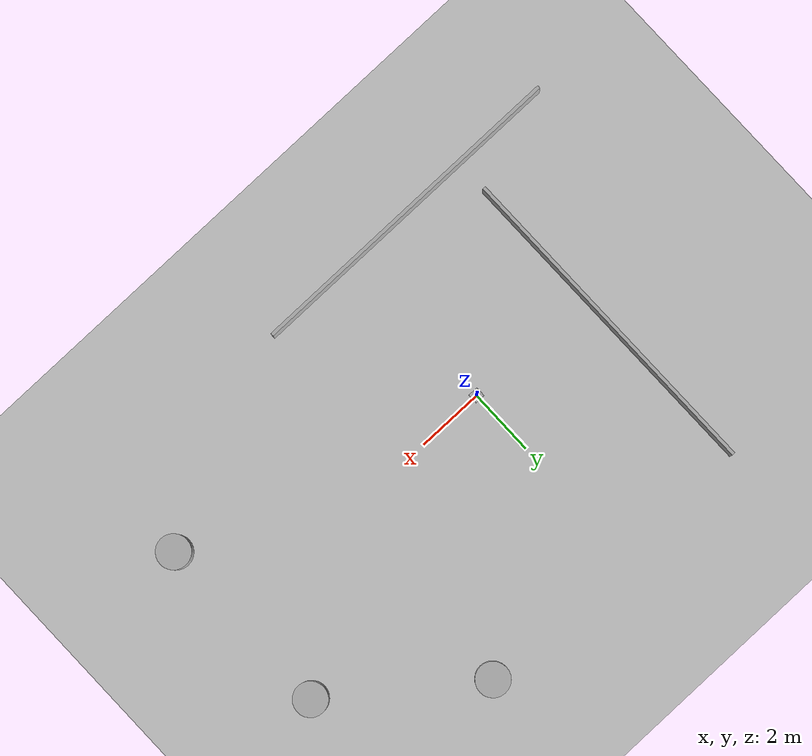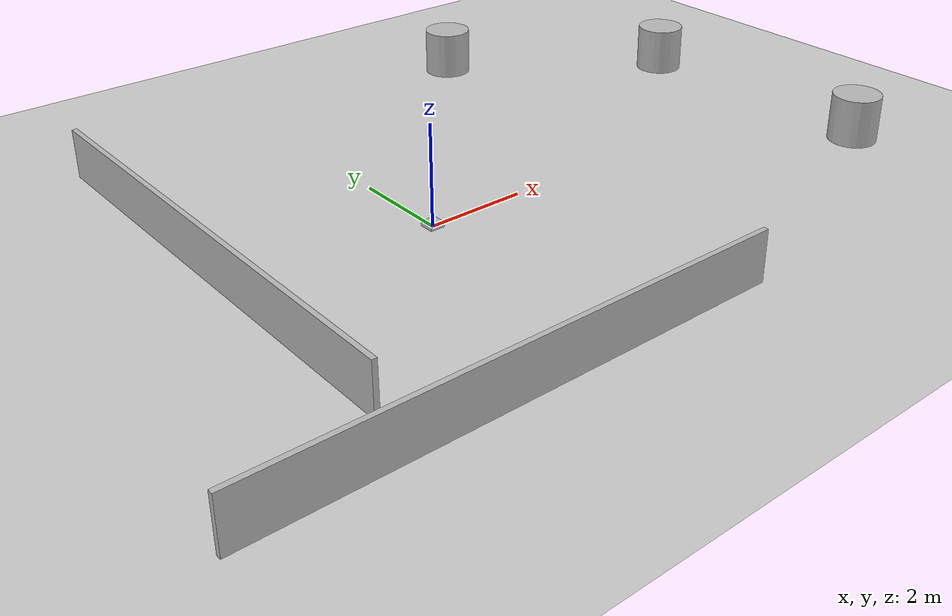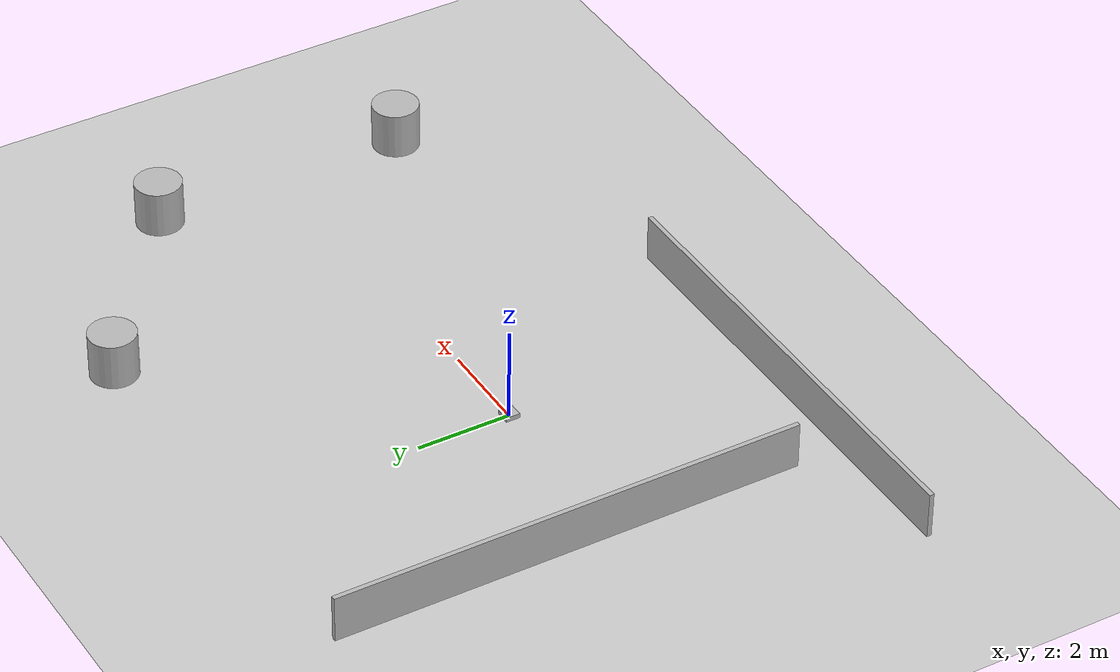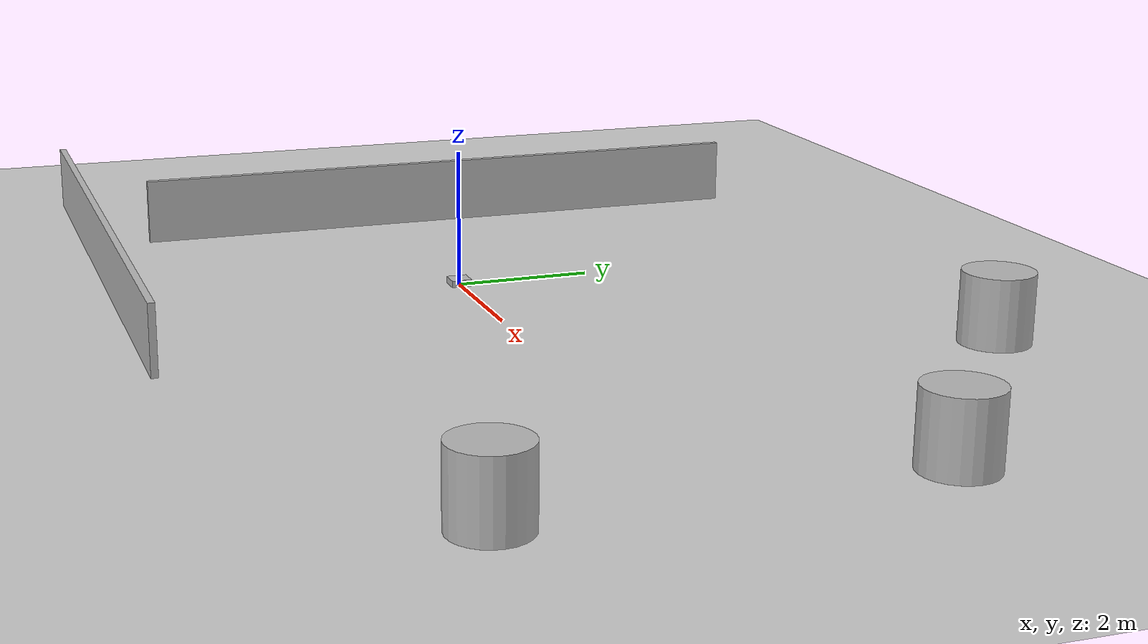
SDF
<?xml version='1.0'?>
<sdf version="1.4">
  <world name="floating_laser_world">

    <!-- Ground Plane -->
    <include>
      <uri>model://ground_plane</uri>
    </include>

    <include>
      <uri>model://sun</uri>
    </include>

    <!-- Sensor -->
    <model name="floating_sensor">
      <pose>0 0 0.05 0 0 0</pose>
      <link name="link">
	<visual name="visual">
	  <geometry>
	    <box>
	      <size> 0.3 0.3 0.1 </size>
	    </box>
	  </geometry>
	</visual>
	<collision name="collision">
          <geometry>
            <box>
              <size>0.3 0.3 0.1</size>
            </box>
          </geometry>
	</collision>
	<sensor name="laser" type="ray">
	  <pose>0 0 0.051 0 0 0</pose>
	  <ray>
	    <scan>
	      <horizontal>
		<samples>360</samples>
		<resolution>1</resolution>
		<min_angle>0</min_angle>
		<max_angle>6.26573201</max_angle>
	      </horizontal>
	    </scan>
	    <range>
	      <min>0.08</min>
	      <max>5</max>
	      <resolution>0.001</resolution>
	    </range>
	  </ray>
          <always_on>1</always_on>
          <update_rate>30</update_rate>
          <visualize>true</visualize>
	</sensor>
      </link>
      <plugin name="traj_follower" filename="libmove_model.so"/>
    </model>

    <!-- Obstacles -->
    <model name='box_1'>
      <pose>-2 -5 0.5 0 -0 0</pose>
      <link name='link'>
        <collision name='collision'>
          <geometry>
            <box>
              <size>10.0 0.1 1</size>
            </box>
          </geometry>
          <max_contacts>10</max_contacts>
          <surface>
            <contact>
              <ode/>
            </contact>
            <bounce/>
            <friction>
              <ode/>
            </friction>
          </surface>
        </collision>
        <visual name='visual'>
          <geometry>
            <box>
              <size>10.0 0.1 1</size>
            </box>
          </geometry>
        </visual>
        <self_collide>0</self_collide>
        <kinematic>0</kinematic>
        <gravity>1</gravity>
      </link>
    </model>

    <model name='box_2'>
      <pose>-4 1 0.5 0 -0 0</pose>
      <link name='link'>
        <collision name='collision'>
          <geometry>
            <box>
              <size>0.1 10.0 1</size>
            </box>
          </geometry>
          <max_contacts>10</max_contacts>
          <surface>
            <contact>
              <ode/>
            </contact>
            <bounce/>
            <friction>
              <ode/>
            </friction>
          </surface>
        </collision>
        <visual name='visual'>
          <geometry>
            <box>
              <size>0.1 10.0 1</size>
            </box>
          </geometry>
        </visual>
        <self_collide>0</self_collide>
        <kinematic>0</kinematic>
        <gravity>1</gravity>
      </link>
    </model>

    <model name='unit_cylinder_1'>
      <pose>5 6 0.5 0 -0 0</pose>
      <link name='link'>
        <collision name='collision'>
          <geometry>
            <cylinder>
              <radius>0.5</radius>
              <length>1</length>
            </cylinder>
          </geometry>
          <max_contacts>10</max_contacts>
          <surface>
            <contact>
              <ode/>
            </contact>
            <bounce/>
            <friction>
              <ode/>
            </friction>
          </surface>
        </collision>
        <visual name='visual'>
          <geometry>
            <cylinder>
              <radius>0.5</radius>
              <length>1</length>
            </cylinder>
          </geometry>
        </visual>
        <self_collide>0</self_collide>
        <kinematic>0</kinematic>
        <gravity>1</gravity>
      </link>
    </model>

    <model name='unit_cylinder_2'>
      <pose>9 3 0.5 0 -0 0</pose>
      <link name='link'>
        <collision name='collision'>
          <geometry>
            <cylinder>
              <radius>0.5</radius>
              <length>1</length>
            </cylinder>
          </geometry>
          <max_contacts>10</max_contacts>
          <surface>
            <contact>
              <ode/>
            </contact>
            <bounce/>
            <friction>
              <ode/>
            </friction>
          </surface>
        </collision>
        <visual name='visual'>
          <geometry>
            <cylinder>
              <radius>0.5</radius>
              <length>1</length>
            </cylinder>
          </geometry>
        </visual>
        <self_collide>0</self_collide>
        <kinematic>0</kinematic>
        <gravity>1</gravity>
      </link>
    </model>

    <model name='unit_cylinder_3'>
      <pose>9 -2.48776 0.5 0 -0 0</pose>
      <link name='link'>
        <collision name='collision'>
          <geometry>
            <cylinder>
              <radius>0.5</radius>
              <length>1</length>
            </cylinder>
          </geometry>
          <max_contacts>10</max_contacts>
          <surface>
            <contact>
              <ode/>
            </contact>
            <bounce/>
            <friction>
              <ode/>
            </friction>
          </surface>
        </collision>
        <visual name='visual'>
          <geometry>
            <cylinder>
              <radius>0.5</radius>
              <length>1</length>
            </cylinder>
          </geometry>
        </visual>
        <self_collide>0</self_collide>
        <kinematic>0</kinematic>
        <gravity>1</gravity>
      </link>
    </model>

  </world>
</sdf>
